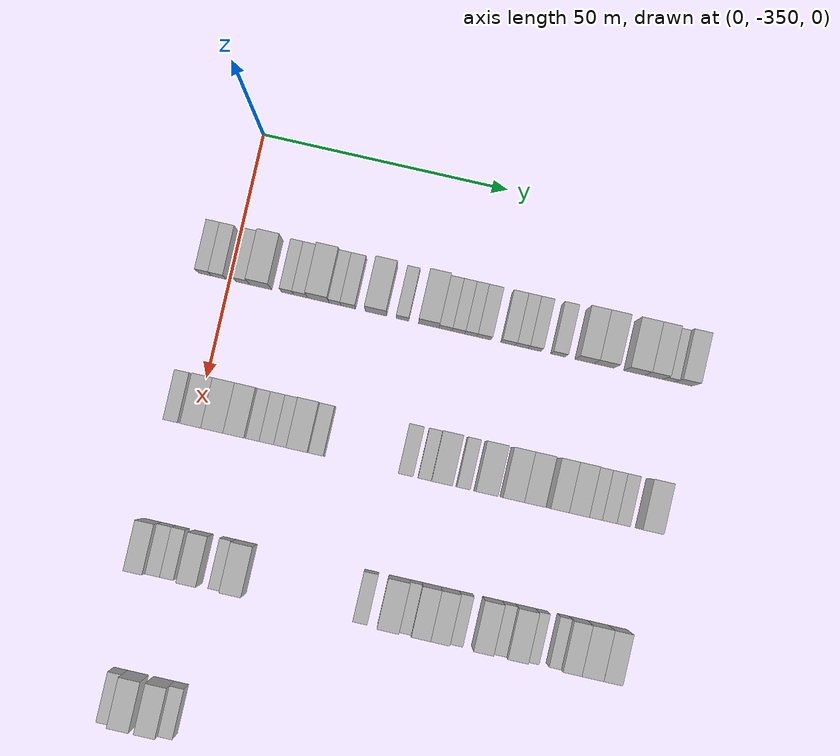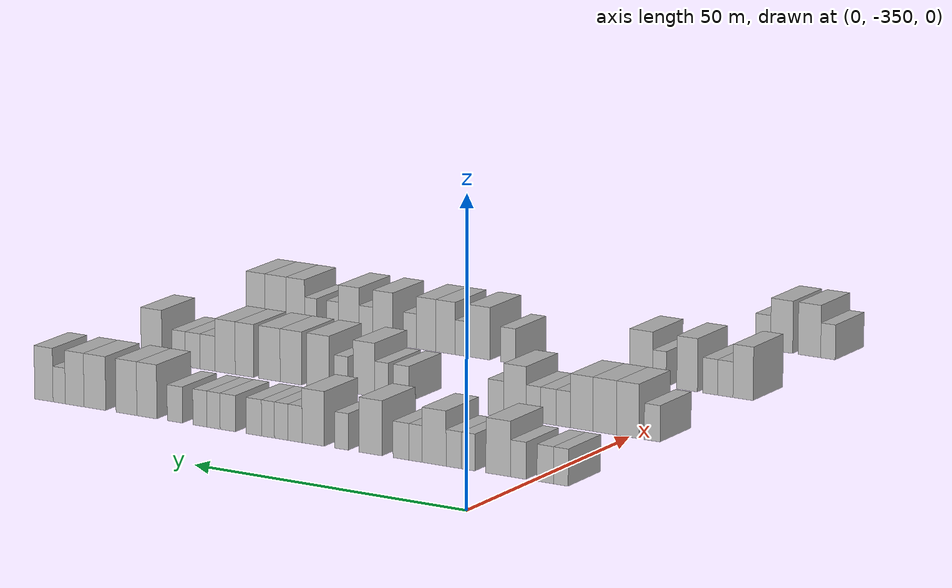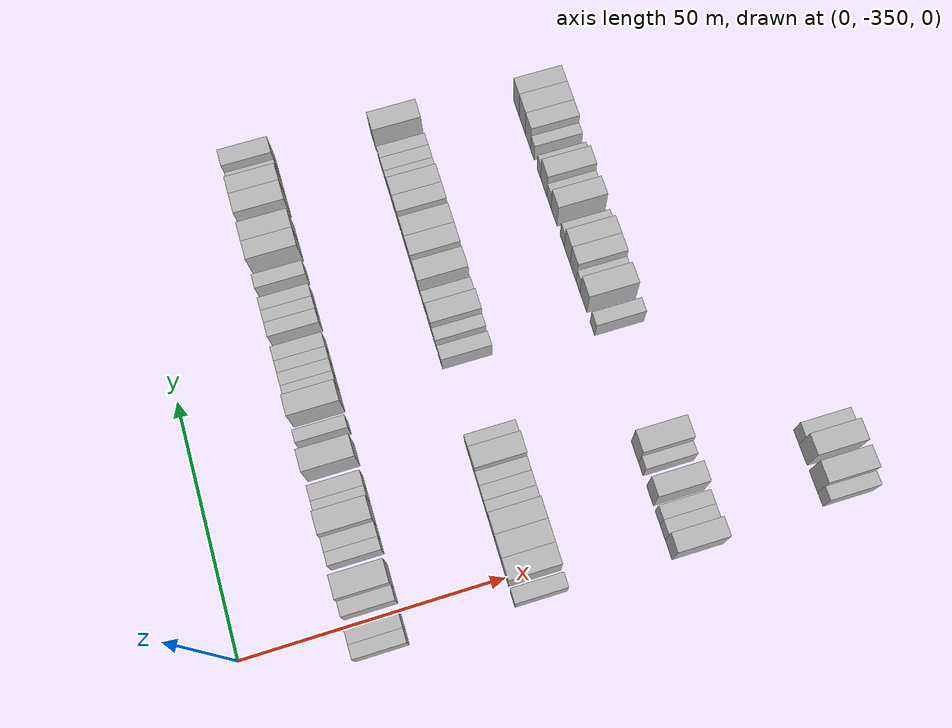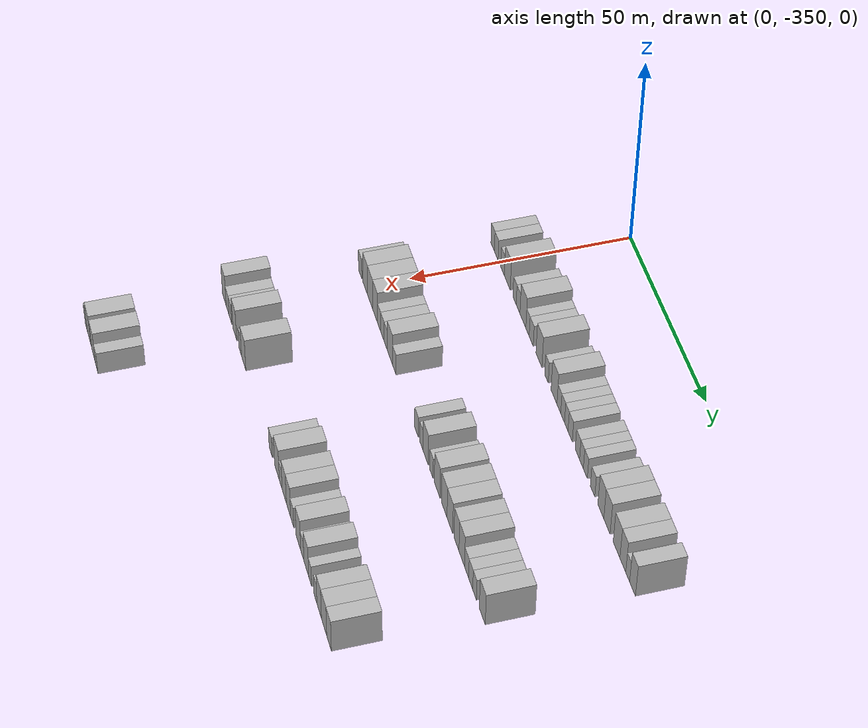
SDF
<sdf version="1.6">
 <world name="default">
  <model name="building_21">
   <static>1</static>
   <pose>25.0000 -354.9608 0 0.000000 0.000000 0.000000</pose>
   <link name="link">
    <pose>0 0 3.00 0 0 0</pose>
    <collision name="collision"><geometry><box><size>10.0000 2.6905 6.0000</size></box></geometry></collision>
    <visual name="visual">
     <cast_shadows>0</cast_shadows>
     <geometry><box><size>10.0000 2.6905 6.0000</size></box></geometry>
     <material>
      <script>
       <uri>model://HANNAS_wall/materials/scripts</uri>
       <uri>model://HANNAS_wall/materials/textures</uri>
       <name>vrc/HANNAS_wall</name>
      </script>
     </material>
    </visual>
   </link>
  </model>
  <model name="building_22">
   <static>1</static>
   <pose>25.0000 -352.1354 0 0.000000 0.000000 0.000000</pose>
   <link name="link">
    <pose>0 0 3.00 0 0 0</pose>
    <collision name="collision"><geometry><box><size>10.0000 2.9602 6.0000</size></box></geometry></collision>
    <visual name="visual">
     <cast_shadows>0</cast_shadows>
     <geometry><box><size>10.0000 2.9602 6.0000</size></box></geometry>
     <material>
      <script>
       <uri>model://HANNAS_wall/materials/scripts</uri>
       <uri>model://HANNAS_wall/materials/textures</uri>
       <name>vrc/HANNAS_wall</name>
      </script>
     </material>
    </visual>
   </link>
  </model>
  <model name="building_23">
   <static>1</static>
   <pose>25.0000 -347.2281 0 0.000000 0.000000 0.000000</pose>
   <link name="link">
    <pose>0 0 3.00 0 0 0</pose>
    <collision name="collision"><geometry><box><size>10.0000 2.8545 6.0000</size></box></geometry></collision>
    <visual name="visual">
     <cast_shadows>0</cast_shadows>
     <geometry><box><size>10.0000 2.8545 6.0000</size></box></geometry>
     <material>
      <script>
       <uri>model://HANNAS_wall/materials/scripts</uri>
       <uri>model://HANNAS_wall/materials/textures</uri>
       <name>vrc/HANNAS_wall</name>
      </script>
     </material>
    </visual>
   </link>
  </model>
  <model name="building_24">
   <static>1</static>
   <pose>25.0000 -343.5689 0 0.000000 0.000000 0.000000</pose>
   <link name="link">
    <pose>0 0 4.50 0 0 0</pose>
    <collision name="collision"><geometry><box><size>10.0000 4.4639 9.0000</size></box></geometry></collision>
    <visual name="visual">
     <cast_shadows>0</cast_shadows>
     <geometry><box><size>10.0000 4.4639 9.0000</size></box></geometry>
     <material>
      <script>
       <uri>model://HANNAS_wall/materials/scripts</uri>
       <uri>model://HANNAS_wall/materials/textures</uri>
       <name>vrc/HANNAS_wall</name>
      </script>
     </material>
    </visual>
   </link>
  </model>
  <model name="building_25">
   <static>1</static>
   <pose>25.0000 -338.0818 0 0.000000 0.000000 0.000000</pose>
   <link name="link">
    <pose>0 0 3.00 0 0 0</pose>
    <collision name="collision"><geometry><box><size>10.0000 2.5103 6.0000</size></box></geometry></collision>
    <visual name="visual">
     <cast_shadows>0</cast_shadows>
     <geometry><box><size>10.0000 2.5103 6.0000</size></box></geometry>
     <material>
      <script>
       <uri>model://HANNAS_wall/materials/scripts</uri>
       <uri>model://HANNAS_wall/materials/textures</uri>
       <name>vrc/HANNAS_wall</name>
      </script>
     </material>
    </visual>
   </link>
  </model>
  <model name="building_26">
   <static>1</static>
   <pose>25.0000 -335.4188 0 0.000000 0.000000 0.000000</pose>
   <link name="link">
    <pose>0 0 3.00 0 0 0</pose>
    <collision name="collision"><geometry><box><size>10.0000 2.8156 6.0000</size></box></geometry></collision>
    <visual name="visual">
     <cast_shadows>0</cast_shadows>
     <geometry><box><size>10.0000 2.8156 6.0000</size></box></geometry>
     <material>
      <script>
       <uri>model://HANNAS_wall/materials/scripts</uri>
       <uri>model://HANNAS_wall/materials/textures</uri>
       <name>vrc/HANNAS_wall</name>
      </script>
     </material>
    </visual>
   </link>
  </model>
  <model name="building_27">
   <static>1</static>
   <pose>25.0000 -331.8076 0 0.000000 0.000000 0.000000</pose>
   <link name="link">
    <pose>0 0 4.50 0 0 0</pose>
    <collision name="collision"><geometry><box><size>10.0000 4.4070 9.0000</size></box></geometry></collision>
    <visual name="visual">
     <cast_shadows>0</cast_shadows>
     <geometry><box><size>10.0000 4.4070 9.0000</size></box></geometry>
     <material>
      <script>
       <uri>model://HANNAS_wall/materials/scripts</uri>
       <uri>model://HANNAS_wall/materials/textures</uri>
       <name>vrc/HANNAS_wall</name>
      </script>
     </material>
    </visual>
   </link>
  </model>
  <model name="building_28">
   <static>1</static>
   <pose>25.0000 -328.3878 0 0.000000 0.000000 0.000000</pose>
   <link name="link">
    <pose>0 0 3.00 0 0 0</pose>
    <collision name="collision"><geometry><box><size>10.0000 2.4326 6.0000</size></box></geometry></collision>
    <visual name="visual">
     <cast_shadows>0</cast_shadows>
     <geometry><box><size>10.0000 2.4326 6.0000</size></box></geometry>
     <material>
      <script>
       <uri>model://HANNAS_wall/materials/scripts</uri>
       <uri>model://HANNAS_wall/materials/textures</uri>
       <name>vrc/HANNAS_wall</name>
      </script>
     </material>
    </visual>
   </link>
  </model>
  <model name="building_29">
   <static>1</static>
   <pose>25.0000 -325.6824 0 0.000000 0.000000 0.000000</pose>
   <link name="link">
    <pose>0 0 3.00 0 0 0</pose>
    <collision name="collision"><geometry><box><size>10.0000 2.9783 6.0000</size></box></geometry></collision>
    <visual name="visual">
     <cast_shadows>0</cast_shadows>
     <geometry><box><size>10.0000 2.9783 6.0000</size></box></geometry>
     <material>
      <script>
       <uri>model://HANNAS_wall/materials/scripts</uri>
       <uri>model://HANNAS_wall/materials/textures</uri>
       <name>vrc/HANNAS_wall</name>
      </script>
     </material>
    </visual>
   </link>
  </model>
  <model name="building_30">
   <static>1</static>
   <pose>25.0000 -320.0331 0 0.000000 0.000000 0.000000</pose>
   <link name="link">
    <pose>0 0 4.50 0 0 0</pose>
    <collision name="collision"><geometry><box><size>10.0000 4.3201 9.0000</size></box></geometry></collision>
    <visual name="visual">
     <cast_shadows>0</cast_shadows>
     <geometry><box><size>10.0000 4.3201 9.0000</size></box></geometry>
     <material>
      <script>
       <uri>model://HANNAS_wall/materials/scripts</uri>
       <uri>model://HANNAS_wall/materials/textures</uri>
       <name>vrc/HANNAS_wall</name>
      </script>
     </material>
    </visual>
   </link>
  </model>
  <model name="building_31">
   <static>1</static>
   <pose>25.0000 -314.6101 0 0.000000 0.000000 0.000000</pose>
   <link name="link">
    <pose>0 0 3.00 0 0 0</pose>
    <collision name="collision"><geometry><box><size>10.0000 2.5259 6.0000</size></box></geometry></collision>
    <visual name="visual">
     <cast_shadows>0</cast_shadows>
     <geometry><box><size>10.0000 2.5259 6.0000</size></box></geometry>
     <material>
      <script>
       <uri>model://HANNAS_wall/materials/scripts</uri>
       <uri>model://HANNAS_wall/materials/textures</uri>
       <name>vrc/HANNAS_wall</name>
      </script>
     </material>
    </visual>
   </link>
  </model>
  <model name="building_32">
   <static>1</static>
   <pose>25.0000 -309.2522 0 0.000000 0.000000 0.000000</pose>
   <link name="link">
    <pose>0 0 4.50 0 0 0</pose>
    <collision name="collision"><geometry><box><size>10.0000 4.1900 9.0000</size></box></geometry></collision>
    <visual name="visual">
     <cast_shadows>0</cast_shadows>
     <geometry><box><size>10.0000 4.1900 9.0000</size></box></geometry>
     <material>
      <script>
       <uri>model://HANNAS_wall/materials/scripts</uri>
       <uri>model://HANNAS_wall/materials/textures</uri>
       <name>vrc/HANNAS_wall</name>
      </script>
     </material>
    </visual>
   </link>
  </model>
  <model name="building_33">
   <static>1</static>
   <pose>25.0000 -305.8364 0 0.000000 0.000000 0.000000</pose>
   <link name="link">
    <pose>0 0 3.00 0 0 0</pose>
    <collision name="collision"><geometry><box><size>10.0000 2.6414 6.0000</size></box></geometry></collision>
    <visual name="visual">
     <cast_shadows>0</cast_shadows>
     <geometry><box><size>10.0000 2.6414 6.0000</size></box></geometry>
     <material>
      <script>
       <uri>model://HANNAS_wall/materials/scripts</uri>
       <uri>model://HANNAS_wall/materials/textures</uri>
       <name>vrc/HANNAS_wall</name>
      </script>
     </material>
    </visual>
   </link>
  </model>
  <model name="building_34">
   <static>1</static>
   <pose>25.0000 -303.2210 0 0.000000 0.000000 0.000000</pose>
   <link name="link">
    <pose>0 0 3.00 0 0 0</pose>
    <collision name="collision"><geometry><box><size>10.0000 2.5894 6.0000</size></box></geometry></collision>
    <visual name="visual">
     <cast_shadows>0</cast_shadows>
     <geometry><box><size>10.0000 2.5894 6.0000</size></box></geometry>
     <material>
      <script>
       <uri>model://HANNAS_wall/materials/scripts</uri>
       <uri>model://HANNAS_wall/materials/textures</uri>
       <name>vrc/HANNAS_wall</name>
      </script>
     </material>
    </visual>
   </link>
  </model>
  <model name="building_35">
   <static>1</static>
   <pose>25.0000 -300.7022 0 0.000000 0.000000 0.000000</pose>
   <link name="link">
    <pose>0 0 3.00 0 0 0</pose>
    <collision name="collision"><geometry><box><size>10.0000 2.4482 6.0000</size></box></geometry></collision>
    <visual name="visual">
     <cast_shadows>0</cast_shadows>
     <geometry><box><size>10.0000 2.4482 6.0000</size></box></geometry>
     <material>
      <script>
       <uri>model://HANNAS_wall/materials/scripts</uri>
       <uri>model://HANNAS_wall/materials/textures</uri>
       <name>vrc/HANNAS_wall</name>
      </script>
     </material>
    </visual>
   </link>
  </model>
  <model name="building_36">
   <static>1</static>
   <pose>25.0000 -298.0073 0 0.000000 0.000000 0.000000</pose>
   <link name="link">
    <pose>0 0 3.00 0 0 0</pose>
    <collision name="collision"><geometry><box><size>10.0000 2.9417 6.0000</size></box></geometry></collision>
    <visual name="visual">
     <cast_shadows>0</cast_shadows>
     <geometry><box><size>10.0000 2.9417 6.0000</size></box></geometry>
     <material>
      <script>
       <uri>model://HANNAS_wall/materials/scripts</uri>
       <uri>model://HANNAS_wall/materials/textures</uri>
       <name>vrc/HANNAS_wall</name>
      </script>
     </material>
    </visual>
   </link>
  </model>
  <model name="building_37">
   <static>1</static>
   <pose>25.0000 -293.0573 0 0.000000 0.000000 0.000000</pose>
   <link name="link">
    <pose>0 0 3.00 0 0 0</pose>
    <collision name="collision"><geometry><box><size>10.0000 2.9581 6.0000</size></box></geometry></collision>
    <visual name="visual">
     <cast_shadows>0</cast_shadows>
     <geometry><box><size>10.0000 2.9581 6.0000</size></box></geometry>
     <material>
      <script>
       <uri>model://HANNAS_wall/materials/scripts</uri>
       <uri>model://HANNAS_wall/materials/textures</uri>
       <name>vrc/HANNAS_wall</name>
      </script>
     </material>
    </visual>
   </link>
  </model>
  <model name="building_38">
   <static>1</static>
   <pose>25.0000 -290.2977 0 0.000000 0.000000 0.000000</pose>
   <link name="link">
    <pose>0 0 3.00 0 0 0</pose>
    <collision name="collision"><geometry><box><size>10.0000 2.5612 6.0000</size></box></geometry></collision>
    <visual name="visual">
     <cast_shadows>0</cast_shadows>
     <geometry><box><size>10.0000 2.5612 6.0000</size></box></geometry>
     <material>
      <script>
       <uri>model://HANNAS_wall/materials/scripts</uri>
       <uri>model://HANNAS_wall/materials/textures</uri>
       <name>vrc/HANNAS_wall</name>
      </script>
     </material>
    </visual>
   </link>
  </model>
  <model name="building_39">
   <static>1</static>
   <pose>25.0000 -287.6836 0 0.000000 0.000000 0.000000</pose>
   <link name="link">
    <pose>0 0 3.00 0 0 0</pose>
    <collision name="collision"><geometry><box><size>10.0000 2.6669 6.0000</size></box></geometry></collision>
    <visual name="visual">
     <cast_shadows>0</cast_shadows>
     <geometry><box><size>10.0000 2.6669 6.0000</size></box></geometry>
     <material>
      <script>
       <uri>model://HANNAS_wall/materials/scripts</uri>
       <uri>model://HANNAS_wall/materials/textures</uri>
       <name>vrc/HANNAS_wall</name>
      </script>
     </material>
    </visual>
   </link>
  </model>
  <model name="building_40">
   <static>1</static>
   <pose>25.0000 -282.8744 0 0.000000 0.000000 0.000000</pose>
   <link name="link">
    <pose>0 0 3.00 0 0 0</pose>
    <collision name="collision"><geometry><box><size>10.0000 2.9515 6.0000</size></box></geometry></collision>
    <visual name="visual">
     <cast_shadows>0</cast_shadows>
     <geometry><box><size>10.0000 2.9515 6.0000</size></box></geometry>
     <material>
      <script>
       <uri>model://HANNAS_wall/materials/scripts</uri>
       <uri>model://HANNAS_wall/materials/textures</uri>
       <name>vrc/HANNAS_wall</name>
      </script>
     </material>
    </visual>
   </link>
  </model>
  <model name="building_41">
   <static>1</static>
   <pose>25.0000 -277.4504 0 0.000000 0.000000 0.000000</pose>
   <link name="link">
    <pose>0 0 4.50 0 0 0</pose>
    <collision name="collision"><geometry><box><size>10.0000 3.8964 9.0000</size></box></geometry></collision>
    <visual name="visual">
     <cast_shadows>0</cast_shadows>
     <geometry><box><size>10.0000 3.8964 9.0000</size></box></geometry>
     <material>
      <script>
       <uri>model://HANNAS_wall/materials/scripts</uri>
       <uri>model://HANNAS_wall/materials/textures</uri>
       <name>vrc/HANNAS_wall</name>
      </script>
     </material>
    </visual>
   </link>
  </model>
  <model name="building_42">
   <static>1</static>
   <pose>25.0000 -273.4722 0 0.000000 0.000000 0.000000</pose>
   <link name="link">
    <pose>0 0 4.50 0 0 0</pose>
    <collision name="collision"><geometry><box><size>10.0000 4.0600 9.0000</size></box></geometry></collision>
    <visual name="visual">
     <cast_shadows>0</cast_shadows>
     <geometry><box><size>10.0000 4.0600 9.0000</size></box></geometry>
     <material>
      <script>
       <uri>model://HANNAS_wall/materials/scripts</uri>
       <uri>model://HANNAS_wall/materials/textures</uri>
       <name>vrc/HANNAS_wall</name>
      </script>
     </material>
    </visual>
   </link>
  </model>
  <model name="building_43">
   <static>1</static>
   <pose>25.0000 -267.3102 0 0.000000 0.000000 0.000000</pose>
   <link name="link">
    <pose>0 0 4.50 0 0 0</pose>
    <collision name="collision"><geometry><box><size>10.0000 4.2639 9.0000</size></box></geometry></collision>
    <visual name="visual">
     <cast_shadows>0</cast_shadows>
     <geometry><box><size>10.0000 4.2639 9.0000</size></box></geometry>
     <material>
      <script>
       <uri>model://HANNAS_wall/materials/scripts</uri>
       <uri>model://HANNAS_wall/materials/textures</uri>
       <name>vrc/HANNAS_wall</name>
      </script>
     </material>
    </visual>
   </link>
  </model>
  <model name="building_44">
   <static>1</static>
   <pose>25.0000 -263.3393 0 0.000000 0.000000 0.000000</pose>
   <link name="link">
    <pose>0 0 4.50 0 0 0</pose>
    <collision name="collision"><geometry><box><size>10.0000 3.6780 9.0000</size></box></geometry></collision>
    <visual name="visual">
     <cast_shadows>0</cast_shadows>
     <geometry><box><size>10.0000 3.6780 9.0000</size></box></geometry>
     <material>
      <script>
       <uri>model://HANNAS_wall/materials/scripts</uri>
       <uri>model://HANNAS_wall/materials/textures</uri>
       <name>vrc/HANNAS_wall</name>
      </script>
     </material>
    </visual>
   </link>
  </model>
  <model name="building_45">
   <static>1</static>
   <pose>25.0000 -260.2956 0 0.000000 0.000000 0.000000</pose>
   <link name="link">
    <pose>0 0 3.00 0 0 0</pose>
    <collision name="collision"><geometry><box><size>10.0000 2.4093 6.0000</size></box></geometry></collision>
    <visual name="visual">
     <cast_shadows>0</cast_shadows>
     <geometry><box><size>10.0000 2.4093 6.0000</size></box></geometry>
     <material>
      <script>
       <uri>model://HANNAS_wall/materials/scripts</uri>
       <uri>model://HANNAS_wall/materials/textures</uri>
       <name>vrc/HANNAS_wall</name>
      </script>
     </material>
    </visual>
   </link>
  </model>
  <model name="building_46">
   <static>1</static>
   <pose>25.0000 -257.2852 0 0.000000 0.000000 0.000000</pose>
   <link name="link">
    <pose>0 0 4.50 0 0 0</pose>
    <collision name="collision"><geometry><box><size>10.0000 3.6115 9.0000</size></box></geometry></collision>
    <visual name="visual">
     <cast_shadows>0</cast_shadows>
     <geometry><box><size>10.0000 3.6115 9.0000</size></box></geometry>
     <material>
      <script>
       <uri>model://HANNAS_wall/materials/scripts</uri>
       <uri>model://HANNAS_wall/materials/textures</uri>
       <name>vrc/HANNAS_wall</name>
      </script>
     </material>
    </visual>
   </link>
  </model>
  <model name="building_255">
   <static>1</static>
   <pose>55.0000 -354.1381 0 0.000000 0.000000 0.000000</pose>
   <link name="link">
    <pose>0 0 3.00 0 0 0</pose>
    <collision name="collision"><geometry><box><size>10.0000 2.9086 6.0000</size></box></geometry></collision>
    <visual name="visual">
     <cast_shadows>0</cast_shadows>
     <geometry><box><size>10.0000 2.9086 6.0000</size></box></geometry>
     <material>
      <script>
       <uri>model://HANNAS_wall/materials/scripts</uri>
       <uri>model://HANNAS_wall/materials/textures</uri>
       <name>vrc/HANNAS_wall</name>
      </script>
     </material>
    </visual>
   </link>
  </model>
  <model name="building_256">
   <static>1</static>
   <pose>55.0000 -349.6295 0 0.000000 0.000000 0.000000</pose>
   <link name="link">
    <pose>0 0 4.50 0 0 0</pose>
    <collision name="collision"><geometry><box><size>10.0000 4.1086 9.0000</size></box></geometry></collision>
    <visual name="visual">
     <cast_shadows>0</cast_shadows>
     <geometry><box><size>10.0000 4.1086 9.0000</size></box></geometry>
     <material>
      <script>
       <uri>model://HANNAS_wall/materials/scripts</uri>
       <uri>model://HANNAS_wall/materials/textures</uri>
       <name>vrc/HANNAS_wall</name>
      </script>
     </material>
    </visual>
   </link>
  </model>
  <model name="building_257">
   <static>1</static>
   <pose>55.0000 -345.3846 0 0.000000 0.000000 0.000000</pose>
   <link name="link">
    <pose>0 0 4.50 0 0 0</pose>
    <collision name="collision"><geometry><box><size>10.0000 4.3812 9.0000</size></box></geometry></collision>
    <visual name="visual">
     <cast_shadows>0</cast_shadows>
     <geometry><box><size>10.0000 4.3812 9.0000</size></box></geometry>
     <material>
      <script>
       <uri>model://HANNAS_wall/materials/scripts</uri>
       <uri>model://HANNAS_wall/materials/textures</uri>
       <name>vrc/HANNAS_wall</name>
      </script>
     </material>
    </visual>
   </link>
  </model>
  <model name="building_258">
   <static>1</static>
   <pose>55.0000 -341.1250 0 0.000000 0.000000 0.000000</pose>
   <link name="link">
    <pose>0 0 4.50 0 0 0</pose>
    <collision name="collision"><geometry><box><size>10.0000 4.1381 9.0000</size></box></geometry></collision>
    <visual name="visual">
     <cast_shadows>0</cast_shadows>
     <geometry><box><size>10.0000 4.1381 9.0000</size></box></geometry>
     <material>
      <script>
       <uri>model://HANNAS_wall/materials/scripts</uri>
       <uri>model://HANNAS_wall/materials/textures</uri>
       <name>vrc/HANNAS_wall</name>
      </script>
     </material>
    </visual>
   </link>
  </model>
  <model name="building_259">
   <static>1</static>
   <pose>55.0000 -337.7175 0 0.000000 0.000000 0.000000</pose>
   <link name="link">
    <pose>0 0 3.00 0 0 0</pose>
    <collision name="collision"><geometry><box><size>10.0000 2.6768 6.0000</size></box></geometry></collision>
    <visual name="visual">
     <cast_shadows>0</cast_shadows>
     <geometry><box><size>10.0000 2.6768 6.0000</size></box></geometry>
     <material>
      <script>
       <uri>model://HANNAS_wall/materials/scripts</uri>
       <uri>model://HANNAS_wall/materials/textures</uri>
       <name>vrc/HANNAS_wall</name>
      </script>
     </material>
    </visual>
   </link>
  </model>
  <model name="building_260">
   <static>1</static>
   <pose>55.0000 -334.9258 0 0.000000 0.000000 0.000000</pose>
   <link name="link">
    <pose>0 0 3.00 0 0 0</pose>
    <collision name="collision"><geometry><box><size>10.0000 2.9067 6.0000</size></box></geometry></collision>
    <visual name="visual">
     <cast_shadows>0</cast_shadows>
     <geometry><box><size>10.0000 2.9067 6.0000</size></box></geometry>
     <material>
      <script>
       <uri>model://HANNAS_wall/materials/scripts</uri>
       <uri>model://HANNAS_wall/materials/textures</uri>
       <name>vrc/HANNAS_wall</name>
      </script>
     </material>
    </visual>
   </link>
  </model>
  <model name="building_261">
   <static>1</static>
   <pose>55.0000 -332.1049 0 0.000000 0.000000 0.000000</pose>
   <link name="link">
    <pose>0 0 3.00 0 0 0</pose>
    <collision name="collision"><geometry><box><size>10.0000 2.7351 6.0000</size></box></geometry></collision>
    <visual name="visual">
     <cast_shadows>0</cast_shadows>
     <geometry><box><size>10.0000 2.7351 6.0000</size></box></geometry>
     <material>
      <script>
       <uri>model://HANNAS_wall/materials/scripts</uri>
       <uri>model://HANNAS_wall/materials/textures</uri>
       <name>vrc/HANNAS_wall</name>
      </script>
     </material>
    </visual>
   </link>
  </model>
  <model name="building_262">
   <static>1</static>
   <pose>55.0000 -328.6437 0 0.000000 0.000000 0.000000</pose>
   <link name="link">
    <pose>0 0 4.50 0 0 0</pose>
    <collision name="collision"><geometry><box><size>10.0000 4.1873 9.0000</size></box></geometry></collision>
    <visual name="visual">
     <cast_shadows>0</cast_shadows>
     <geometry><box><size>10.0000 4.1873 9.0000</size></box></geometry>
     <material>
      <script>
       <uri>model://HANNAS_wall/materials/scripts</uri>
       <uri>model://HANNAS_wall/materials/textures</uri>
       <name>vrc/HANNAS_wall</name>
      </script>
     </material>
    </visual>
   </link>
  </model>
  <model name="building_263">
   <static>1</static>
   <pose>55.0000 -325.0560 0 0.000000 0.000000 0.000000</pose>
   <link name="link">
    <pose>0 0 3.00 0 0 0</pose>
    <collision name="collision"><geometry><box><size>10.0000 2.9882 6.0000</size></box></geometry></collision>
    <visual name="visual">
     <cast_shadows>0</cast_shadows>
     <geometry><box><size>10.0000 2.9882 6.0000</size></box></geometry>
     <material>
      <script>
       <uri>model://HANNAS_wall/materials/scripts</uri>
       <uri>model://HANNAS_wall/materials/textures</uri>
       <name>vrc/HANNAS_wall</name>
      </script>
     </material>
    </visual>
   </link>
  </model>
  <model name="building_264">
   <static>1</static>
   <pose>55.0000 -307.0997 0 0.000000 0.000000 0.000000</pose>
   <link name="link">
    <pose>0 0 3.00 0 0 0</pose>
    <collision name="collision"><geometry><box><size>10.0000 2.9748 6.0000</size></box></geometry></collision>
    <visual name="visual">
     <cast_shadows>0</cast_shadows>
     <geometry><box><size>10.0000 2.9748 6.0000</size></box></geometry>
     <material>
      <script>
       <uri>model://HANNAS_wall/materials/scripts</uri>
       <uri>model://HANNAS_wall/materials/textures</uri>
       <name>vrc/HANNAS_wall</name>
      </script>
     </material>
    </visual>
   </link>
  </model>
  <model name="building_265">
   <static>1</static>
   <pose>55.0000 -303.2961 0 0.000000 0.000000 0.000000</pose>
   <link name="link">
    <pose>0 0 3.00 0 0 0</pose>
    <collision name="collision"><geometry><box><size>10.0000 2.6323 6.0000</size></box></geometry></collision>
    <visual name="visual">
     <cast_shadows>0</cast_shadows>
     <geometry><box><size>10.0000 2.6323 6.0000</size></box></geometry>
     <material>
      <script>
       <uri>model://HANNAS_wall/materials/scripts</uri>
       <uri>model://HANNAS_wall/materials/textures</uri>
       <name>vrc/HANNAS_wall</name>
      </script>
     </material>
    </visual>
   </link>
  </model>
  <model name="building_266">
   <static>1</static>
   <pose>55.0000 -299.9263 0 0.000000 0.000000 0.000000</pose>
   <link name="link">
    <pose>0 0 4.50 0 0 0</pose>
    <collision name="collision"><geometry><box><size>10.0000 4.1072 9.0000</size></box></geometry></collision>
    <visual name="visual">
     <cast_shadows>0</cast_shadows>
     <geometry><box><size>10.0000 4.1072 9.0000</size></box></geometry>
     <material>
      <script>
       <uri>model://HANNAS_wall/materials/scripts</uri>
       <uri>model://HANNAS_wall/materials/textures</uri>
       <name>vrc/HANNAS_wall</name>
      </script>
     </material>
    </visual>
   </link>
  </model>
  <model name="building_267">
   <static>1</static>
   <pose>55.0000 -295.5490 0 0.000000 0.000000 0.000000</pose>
   <link name="link">
    <pose>0 0 3.00 0 0 0</pose>
    <collision name="collision"><geometry><box><size>10.0000 2.6474 6.0000</size></box></geometry></collision>
    <visual name="visual">
     <cast_shadows>0</cast_shadows>
     <geometry><box><size>10.0000 2.6474 6.0000</size></box></geometry>
     <material>
      <script>
       <uri>model://HANNAS_wall/materials/scripts</uri>
       <uri>model://HANNAS_wall/materials/textures</uri>
       <name>vrc/HANNAS_wall</name>
      </script>
     </material>
    </visual>
   </link>
  </model>
  <model name="building_268">
   <static>1</static>
   <pose>55.0000 -291.0569 0 0.000000 0.000000 0.000000</pose>
   <link name="link">
    <pose>0 0 4.50 0 0 0</pose>
    <collision name="collision"><geometry><box><size>10.0000 4.3369 9.0000</size></box></geometry></collision>
    <visual name="visual">
     <cast_shadows>0</cast_shadows>
     <geometry><box><size>10.0000 4.3369 9.0000</size></box></geometry>
     <material>
      <script>
       <uri>model://HANNAS_wall/materials/scripts</uri>
       <uri>model://HANNAS_wall/materials/textures</uri>
       <name>vrc/HANNAS_wall</name>
      </script>
     </material>
    </visual>
   </link>
  </model>
  <model name="building_269">
   <static>1</static>
   <pose>55.0000 -285.7896 0 0.000000 0.000000 0.000000</pose>
   <link name="link">
    <pose>0 0 4.50 0 0 0</pose>
    <collision name="collision"><geometry><box><size>10.0000 4.1976 9.0000</size></box></geometry></collision>
    <visual name="visual">
     <cast_shadows>0</cast_shadows>
     <geometry><box><size>10.0000 4.1976 9.0000</size></box></geometry>
     <material>
      <script>
       <uri>model://HANNAS_wall/materials/scripts</uri>
       <uri>model://HANNAS_wall/materials/textures</uri>
       <name>vrc/HANNAS_wall</name>
      </script>
     </material>
    </visual>
   </link>
  </model>
  <model name="building_270">
   <static>1</static>
   <pose>55.0000 -281.5905 0 0.000000 0.000000 0.000000</pose>
   <link name="link">
    <pose>0 0 4.50 0 0 0</pose>
    <collision name="collision"><geometry><box><size>10.0000 4.2006 9.0000</size></box></geometry></collision>
    <visual name="visual">
     <cast_shadows>0</cast_shadows>
     <geometry><box><size>10.0000 4.2006 9.0000</size></box></geometry>
     <material>
      <script>
       <uri>model://HANNAS_wall/materials/scripts</uri>
       <uri>model://HANNAS_wall/materials/textures</uri>
       <name>vrc/HANNAS_wall</name>
      </script>
     </material>
    </visual>
   </link>
  </model>
  <model name="building_271">
   <static>1</static>
   <pose>55.0000 -276.6794 0 0.000000 0.000000 0.000000</pose>
   <link name="link">
    <pose>0 0 4.50 0 0 0</pose>
    <collision name="collision"><geometry><box><size>10.0000 3.6215 9.0000</size></box></geometry></collision>
    <visual name="visual">
     <cast_shadows>0</cast_shadows>
     <geometry><box><size>10.0000 3.6215 9.0000</size></box></geometry>
     <material>
      <script>
       <uri>model://HANNAS_wall/materials/scripts</uri>
       <uri>model://HANNAS_wall/materials/textures</uri>
       <name>vrc/HANNAS_wall</name>
      </script>
     </material>
    </visual>
   </link>
  </model>
  <model name="building_272">
   <static>1</static>
   <pose>55.0000 -272.8817 0 0.000000 0.000000 0.000000</pose>
   <link name="link">
    <pose>0 0 4.50 0 0 0</pose>
    <collision name="collision"><geometry><box><size>10.0000 3.9740 9.0000</size></box></geometry></collision>
    <visual name="visual">
     <cast_shadows>0</cast_shadows>
     <geometry><box><size>10.0000 3.9740 9.0000</size></box></geometry>
     <material>
      <script>
       <uri>model://HANNAS_wall/materials/scripts</uri>
       <uri>model://HANNAS_wall/materials/textures</uri>
       <name>vrc/HANNAS_wall</name>
      </script>
     </material>
    </visual>
   </link>
  </model>
  <model name="building_273">
   <static>1</static>
   <pose>55.0000 -269.4002 0 0.000000 0.000000 0.000000</pose>
   <link name="link">
    <pose>0 0 3.00 0 0 0</pose>
    <collision name="collision"><geometry><box><size>10.0000 2.9888 6.0000</size></box></geometry></collision>
    <visual name="visual">
     <cast_shadows>0</cast_shadows>
     <geometry><box><size>10.0000 2.9888 6.0000</size></box></geometry>
     <material>
      <script>
       <uri>model://HANNAS_wall/materials/scripts</uri>
       <uri>model://HANNAS_wall/materials/textures</uri>
       <name>vrc/HANNAS_wall</name>
      </script>
     </material>
    </visual>
   </link>
  </model>
  <model name="building_274">
   <static>1</static>
   <pose>55.0000 -266.4521 0 0.000000 0.000000 0.000000</pose>
   <link name="link">
    <pose>0 0 3.00 0 0 0</pose>
    <collision name="collision"><geometry><box><size>10.0000 2.9075 6.0000</size></box></geometry></collision>
    <visual name="visual">
     <cast_shadows>0</cast_shadows>
     <geometry><box><size>10.0000 2.9075 6.0000</size></box></geometry>
     <material>
      <script>
       <uri>model://HANNAS_wall/materials/scripts</uri>
       <uri>model://HANNAS_wall/materials/textures</uri>
       <name>vrc/HANNAS_wall</name>
      </script>
     </material>
    </visual>
   </link>
  </model>
  <model name="building_275">
   <static>1</static>
   <pose>55.0000 -263.6729 0 0.000000 0.000000 0.000000</pose>
   <link name="link">
    <pose>0 0 3.00 0 0 0</pose>
    <collision name="collision"><geometry><box><size>10.0000 2.6509 6.0000</size></box></geometry></collision>
    <visual name="visual">
     <cast_shadows>0</cast_shadows>
     <geometry><box><size>10.0000 2.6509 6.0000</size></box></geometry>
     <material>
      <script>
       <uri>model://HANNAS_wall/materials/scripts</uri>
       <uri>model://HANNAS_wall/materials/textures</uri>
       <name>vrc/HANNAS_wall</name>
      </script>
     </material>
    </visual>
   </link>
  </model>
  <model name="building_276">
   <static>1</static>
   <pose>55.0000 -258.2724 0 0.000000 0.000000 0.000000</pose>
   <link name="link">
    <pose>0 0 4.50 0 0 0</pose>
    <collision name="collision"><geometry><box><size>10.0000 4.1502 9.0000</size></box></geometry></collision>
    <visual name="visual">
     <cast_shadows>0</cast_shadows>
     <geometry><box><size>10.0000 4.1502 9.0000</size></box></geometry>
     <material>
      <script>
       <uri>model://HANNAS_wall/materials/scripts</uri>
       <uri>model://HANNAS_wall/materials/textures</uri>
       <name>vrc/HANNAS_wall</name>
      </script>
     </material>
    </visual>
   </link>
  </model>
  <model name="building_481">
   <static>1</static>
   <pose>85.0000 -353.9875 0 0.000000 0.000000 0.000000</pose>
   <link name="link">
    <pose>0 0 4.50 0 0 0</pose>
    <collision name="collision"><geometry><box><size>10.0000 3.7506 9.0000</size></box></geometry></collision>
    <visual name="visual">
     <cast_shadows>0</cast_shadows>
     <geometry><box><size>10.0000 3.7506 9.0000</size></box></geometry>
     <material>
      <script>
       <uri>model://HANNAS_wall/materials/scripts</uri>
       <uri>model://HANNAS_wall/materials/textures</uri>
       <name>vrc/HANNAS_wall</name>
      </script>
     </material>
    </visual>
   </link>
  </model>
  <model name="building_482">
   <static>1</static>
   <pose>85.0000 -350.6574 0 0.000000 0.000000 0.000000</pose>
   <link name="link">
    <pose>0 0 3.00 0 0 0</pose>
    <collision name="collision"><geometry><box><size>10.0000 2.9094 6.0000</size></box></geometry></collision>
    <visual name="visual">
     <cast_shadows>0</cast_shadows>
     <geometry><box><size>10.0000 2.9094 6.0000</size></box></geometry>
     <material>
      <script>
       <uri>model://HANNAS_wall/materials/scripts</uri>
       <uri>model://HANNAS_wall/materials/textures</uri>
       <name>vrc/HANNAS_wall</name>
      </script>
     </material>
    </visual>
   </link>
  </model>
  <model name="building_483">
   <static>1</static>
   <pose>85.0000 -347.8301 0 0.000000 0.000000 0.000000</pose>
   <link name="link">
    <pose>0 0 3.00 0 0 0</pose>
    <collision name="collision"><geometry><box><size>10.0000 2.7452 6.0000</size></box></geometry></collision>
    <visual name="visual">
     <cast_shadows>0</cast_shadows>
     <geometry><box><size>10.0000 2.7452 6.0000</size></box></geometry>
     <material>
      <script>
       <uri>model://HANNAS_wall/materials/scripts</uri>
       <uri>model://HANNAS_wall/materials/textures</uri>
       <name>vrc/HANNAS_wall</name>
      </script>
     </material>
    </visual>
   </link>
  </model>
  <model name="building_484">
   <static>1</static>
   <pose>85.0000 -343.5120 0 0.000000 0.000000 0.000000</pose>
   <link name="link">
    <pose>0 0 4.50 0 0 0</pose>
    <collision name="collision"><geometry><box><size>10.0000 3.8911 9.0000</size></box></geometry></collision>
    <visual name="visual">
     <cast_shadows>0</cast_shadows>
     <geometry><box><size>10.0000 3.8911 9.0000</size></box></geometry>
     <material>
      <script>
       <uri>model://HANNAS_wall/materials/scripts</uri>
       <uri>model://HANNAS_wall/materials/textures</uri>
       <name>vrc/HANNAS_wall</name>
      </script>
     </material>
    </visual>
   </link>
  </model>
  <model name="building_485">
   <static>1</static>
   <pose>85.0000 -338.2902 0 0.000000 0.000000 0.000000</pose>
   <link name="link">
    <pose>0 0 3.00 0 0 0</pose>
    <collision name="collision"><geometry><box><size>10.0000 2.5524 6.0000</size></box></geometry></collision>
    <visual name="visual">
     <cast_shadows>0</cast_shadows>
     <geometry><box><size>10.0000 2.5524 6.0000</size></box></geometry>
     <material>
      <script>
       <uri>model://HANNAS_wall/materials/scripts</uri>
       <uri>model://HANNAS_wall/materials/textures</uri>
       <name>vrc/HANNAS_wall</name>
      </script>
     </material>
    </visual>
   </link>
  </model>
  <model name="building_486">
   <static>1</static>
   <pose>85.0000 -334.8357 0 0.000000 0.000000 0.000000</pose>
   <link name="link">
    <pose>0 0 4.50 0 0 0</pose>
    <collision name="collision"><geometry><box><size>10.0000 4.3567 9.0000</size></box></geometry></collision>
    <visual name="visual">
     <cast_shadows>0</cast_shadows>
     <geometry><box><size>10.0000 4.3567 9.0000</size></box></geometry>
     <material>
      <script>
       <uri>model://HANNAS_wall/materials/scripts</uri>
       <uri>model://HANNAS_wall/materials/textures</uri>
       <name>vrc/HANNAS_wall</name>
      </script>
     </material>
    </visual>
   </link>
  </model>
  <model name="building_487">
   <static>1</static>
   <pose>85.0000 -309.3189 0 0.000000 0.000000 0.000000</pose>
   <link name="link">
    <pose>0 0 3.00 0 0 0</pose>
    <collision name="collision"><geometry><box><size>10.0000 2.8923 6.0000</size></box></geometry></collision>
    <visual name="visual">
     <cast_shadows>0</cast_shadows>
     <geometry><box><size>10.0000 2.8923 6.0000</size></box></geometry>
     <material>
      <script>
       <uri>model://HANNAS_wall/materials/scripts</uri>
       <uri>model://HANNAS_wall/materials/textures</uri>
       <name>vrc/HANNAS_wall</name>
      </script>
     </material>
    </visual>
   </link>
  </model>
  <model name="building_488">
   <static>1</static>
   <pose>85.0000 -303.7048 0 0.000000 0.000000 0.000000</pose>
   <link name="link">
    <pose>0 0 4.50 0 0 0</pose>
    <collision name="collision"><geometry><box><size>10.0000 4.3360 9.0000</size></box></geometry></collision>
    <visual name="visual">
     <cast_shadows>0</cast_shadows>
     <geometry><box><size>10.0000 4.3360 9.0000</size></box></geometry>
     <material>
      <script>
       <uri>model://HANNAS_wall/materials/scripts</uri>
       <uri>model://HANNAS_wall/materials/textures</uri>
       <name>vrc/HANNAS_wall</name>
      </script>
     </material>
    </visual>
   </link>
  </model>
  <model name="building_489">
   <static>1</static>
   <pose>85.0000 -300.3154 0 0.000000 0.000000 0.000000</pose>
   <link name="link">
    <pose>0 0 3.00 0 0 0</pose>
    <collision name="collision"><geometry><box><size>10.0000 2.4426 6.0000</size></box></geometry></collision>
    <visual name="visual">
     <cast_shadows>0</cast_shadows>
     <geometry><box><size>10.0000 2.4426 6.0000</size></box></geometry>
     <material>
      <script>
       <uri>model://HANNAS_wall/materials/scripts</uri>
       <uri>model://HANNAS_wall/materials/textures</uri>
       <name>vrc/HANNAS_wall</name>
      </script>
     </material>
    </visual>
   </link>
  </model>
  <model name="building_490">
   <static>1</static>
   <pose>85.0000 -297.1938 0 0.000000 0.000000 0.000000</pose>
   <link name="link">
    <pose>0 0 4.50 0 0 0</pose>
    <collision name="collision"><geometry><box><size>10.0000 3.8008 9.0000</size></box></geometry></collision>
    <visual name="visual">
     <cast_shadows>0</cast_shadows>
     <geometry><box><size>10.0000 3.8008 9.0000</size></box></geometry>
     <material>
      <script>
       <uri>model://HANNAS_wall/materials/scripts</uri>
       <uri>model://HANNAS_wall/materials/textures</uri>
       <name>vrc/HANNAS_wall</name>
      </script>
     </material>
    </visual>
   </link>
  </model>
  <model name="building_491">
   <static>1</static>
   <pose>85.0000 -293.3961 0 0.000000 0.000000 0.000000</pose>
   <link name="link">
    <pose>0 0 4.50 0 0 0</pose>
    <collision name="collision"><geometry><box><size>10.0000 3.7946 9.0000</size></box></geometry></collision>
    <visual name="visual">
     <cast_shadows>0</cast_shadows>
     <geometry><box><size>10.0000 3.7946 9.0000</size></box></geometry>
     <material>
      <script>
       <uri>model://HANNAS_wall/materials/scripts</uri>
       <uri>model://HANNAS_wall/materials/textures</uri>
       <name>vrc/HANNAS_wall</name>
      </script>
     </material>
    </visual>
   </link>
  </model>
  <model name="building_492">
   <static>1</static>
   <pose>85.0000 -290.1697 0 0.000000 0.000000 0.000000</pose>
   <link name="link">
    <pose>0 0 3.00 0 0 0</pose>
    <collision name="collision"><geometry><box><size>10.0000 2.6581 6.0000</size></box></geometry></collision>
    <visual name="visual">
     <cast_shadows>0</cast_shadows>
     <geometry><box><size>10.0000 2.6581 6.0000</size></box></geometry>
     <material>
      <script>
       <uri>model://HANNAS_wall/materials/scripts</uri>
       <uri>model://HANNAS_wall/materials/textures</uri>
       <name>vrc/HANNAS_wall</name>
      </script>
     </material>
    </visual>
   </link>
  </model>
  <model name="building_493">
   <static>1</static>
   <pose>85.0000 -284.8607 0 0.000000 0.000000 0.000000</pose>
   <link name="link">
    <pose>0 0 4.50 0 0 0</pose>
    <collision name="collision"><geometry><box><size>10.0000 3.9599 9.0000</size></box></geometry></collision>
    <visual name="visual">
     <cast_shadows>0</cast_shadows>
     <geometry><box><size>10.0000 3.9599 9.0000</size></box></geometry>
     <material>
      <script>
       <uri>model://HANNAS_wall/materials/scripts</uri>
       <uri>model://HANNAS_wall/materials/textures</uri>
       <name>vrc/HANNAS_wall</name>
      </script>
     </material>
    </visual>
   </link>
  </model>
  <model name="building_494">
   <static>1</static>
   <pose>85.0000 -281.4988 0 0.000000 0.000000 0.000000</pose>
   <link name="link">
    <pose>0 0 3.00 0 0 0</pose>
    <collision name="collision"><geometry><box><size>10.0000 2.7640 6.0000</size></box></geometry></collision>
    <visual name="visual">
     <cast_shadows>0</cast_shadows>
     <geometry><box><size>10.0000 2.7640 6.0000</size></box></geometry>
     <material>
      <script>
       <uri>model://HANNAS_wall/materials/scripts</uri>
       <uri>model://HANNAS_wall/materials/textures</uri>
       <name>vrc/HANNAS_wall</name>
      </script>
     </material>
    </visual>
   </link>
  </model>
  <model name="building_495">
   <static>1</static>
   <pose>85.0000 -278.0985 0 0.000000 0.000000 0.000000</pose>
   <link name="link">
    <pose>0 0 4.50 0 0 0</pose>
    <collision name="collision"><geometry><box><size>10.0000 4.0366 9.0000</size></box></geometry></collision>
    <visual name="visual">
     <cast_shadows>0</cast_shadows>
     <geometry><box><size>10.0000 4.0366 9.0000</size></box></geometry>
     <material>
      <script>
       <uri>model://HANNAS_wall/materials/scripts</uri>
       <uri>model://HANNAS_wall/materials/textures</uri>
       <name>vrc/HANNAS_wall</name>
      </script>
     </material>
    </visual>
   </link>
  </model>
  <model name="building_496">
   <static>1</static>
   <pose>85.0000 -274.8797 0 0.000000 0.000000 0.000000</pose>
   <link name="link">
    <pose>0 0 3.00 0 0 0</pose>
    <collision name="collision"><geometry><box><size>10.0000 2.4010 6.0000</size></box></geometry></collision>
    <visual name="visual">
     <cast_shadows>0</cast_shadows>
     <geometry><box><size>10.0000 2.4010 6.0000</size></box></geometry>
     <material>
      <script>
       <uri>model://HANNAS_wall/materials/scripts</uri>
       <uri>model://HANNAS_wall/materials/textures</uri>
       <name>vrc/HANNAS_wall</name>
      </script>
     </material>
    </visual>
   </link>
  </model>
  <model name="building_497">
   <static>1</static>
   <pose>85.0000 -270.4770 0 0.000000 0.000000 0.000000</pose>
   <link name="link">
    <pose>0 0 3.00 0 0 0</pose>
    <collision name="collision"><geometry><box><size>10.0000 2.4044 6.0000</size></box></geometry></collision>
    <visual name="visual">
     <cast_shadows>0</cast_shadows>
     <geometry><box><size>10.0000 2.4044 6.0000</size></box></geometry>
     <material>
      <script>
       <uri>model://HANNAS_wall/materials/scripts</uri>
       <uri>model://HANNAS_wall/materials/textures</uri>
       <name>vrc/HANNAS_wall</name>
      </script>
     </material>
    </visual>
   </link>
  </model>
  <model name="building_498">
   <static>1</static>
   <pose>85.0000 -267.4261 0 0.000000 0.000000 0.000000</pose>
   <link name="link">
    <pose>0 0 4.50 0 0 0</pose>
    <collision name="collision"><geometry><box><size>10.0000 3.6974 9.0000</size></box></geometry></collision>
    <visual name="visual">
     <cast_shadows>0</cast_shadows>
     <geometry><box><size>10.0000 3.6974 9.0000</size></box></geometry>
     <material>
      <script>
       <uri>model://HANNAS_wall/materials/scripts</uri>
       <uri>model://HANNAS_wall/materials/textures</uri>
       <name>vrc/HANNAS_wall</name>
      </script>
     </material>
    </visual>
   </link>
  </model>
  <model name="building_499">
   <static>1</static>
   <pose>85.0000 -263.4261 0 0.000000 0.000000 0.000000</pose>
   <link name="link">
    <pose>0 0 4.50 0 0 0</pose>
    <collision name="collision"><geometry><box><size>10.0000 4.3025 9.0000</size></box></geometry></collision>
    <visual name="visual">
     <cast_shadows>0</cast_shadows>
     <geometry><box><size>10.0000 4.3025 9.0000</size></box></geometry>
     <material>
      <script>
       <uri>model://HANNAS_wall/materials/scripts</uri>
       <uri>model://HANNAS_wall/materials/textures</uri>
       <name>vrc/HANNAS_wall</name>
      </script>
     </material>
    </visual>
   </link>
  </model>
  <model name="building_500">
   <static>1</static>
   <pose>85.0000 -259.4118 0 0.000000 0.000000 0.000000</pose>
   <link name="link">
    <pose>0 0 4.50 0 0 0</pose>
    <collision name="collision"><geometry><box><size>10.0000 3.7259 9.0000</size></box></geometry></collision>
    <visual name="visual">
     <cast_shadows>0</cast_shadows>
     <geometry><box><size>10.0000 3.7259 9.0000</size></box></geometry>
     <material>
      <script>
       <uri>model://HANNAS_wall/materials/scripts</uri>
       <uri>model://HANNAS_wall/materials/textures</uri>
       <name>vrc/HANNAS_wall</name>
      </script>
     </material>
    </visual>
   </link>
  </model>
  <model name="building_711">
   <static>1</static>
   <pose>115.0000 -353.4471 0 0.000000 0.000000 0.000000</pose>
   <link name="link">
    <pose>0 0 3.00 0 0 0</pose>
    <collision name="collision"><geometry><box><size>10.0000 2.7612 6.0000</size></box></geometry></collision>
    <visual name="visual">
     <cast_shadows>0</cast_shadows>
     <geometry><box><size>10.0000 2.7612 6.0000</size></box></geometry>
     <material>
      <script>
       <uri>model://HANNAS_wall/materials/scripts</uri>
       <uri>model://HANNAS_wall/materials/textures</uri>
       <name>vrc/HANNAS_wall</name>
      </script>
     </material>
    </visual>
   </link>
  </model>
  <model name="building_712">
   <static>1</static>
   <pose>115.0000 -349.9163 0 0.000000 0.000000 0.000000</pose>
   <link name="link">
    <pose>0 0 4.50 0 0 0</pose>
    <collision name="collision"><geometry><box><size>10.0000 4.3004 9.0000</size></box></geometry></collision>
    <visual name="visual">
     <cast_shadows>0</cast_shadows>
     <geometry><box><size>10.0000 4.3004 9.0000</size></box></geometry>
     <material>
      <script>
       <uri>model://HANNAS_wall/materials/scripts</uri>
       <uri>model://HANNAS_wall/materials/textures</uri>
       <name>vrc/HANNAS_wall</name>
      </script>
     </material>
    </visual>
   </link>
  </model>
  <model name="building_713">
   <static>1</static>
   <pose>115.0000 -344.6603 0 0.000000 0.000000 0.000000</pose>
   <link name="link">
    <pose>0 0 4.50 0 0 0</pose>
    <collision name="collision"><geometry><box><size>10.0000 4.2115 9.0000</size></box></geometry></collision>
    <visual name="visual">
     <cast_shadows>0</cast_shadows>
     <geometry><box><size>10.0000 4.2115 9.0000</size></box></geometry>
     <material>
      <script>
       <uri>model://HANNAS_wall/materials/scripts</uri>
       <uri>model://HANNAS_wall/materials/textures</uri>
       <name>vrc/HANNAS_wall</name>
      </script>
     </material>
    </visual>
   </link>
  </model>
  <model name="building_714">
   <static>1</static>
   <pose>115.0000 -341.0970 0 0.000000 0.000000 0.000000</pose>
   <link name="link">
    <pose>0 0 3.00 0 0 0</pose>
    <collision name="collision"><geometry><box><size>10.0000 2.9152 6.0000</size></box></geometry></collision>
    <visual name="visual">
     <cast_shadows>0</cast_shadows>
     <geometry><box><size>10.0000 2.9152 6.0000</size></box></geometry>
     <material>
      <script>
       <uri>model://HANNAS_wall/materials/scripts</uri>
       <uri>model://HANNAS_wall/materials/textures</uri>
       <name>vrc/HANNAS_wall</name>
      </script>
     </material>
    </visual>
   </link>
  </model>
 </world>
</sdf>
